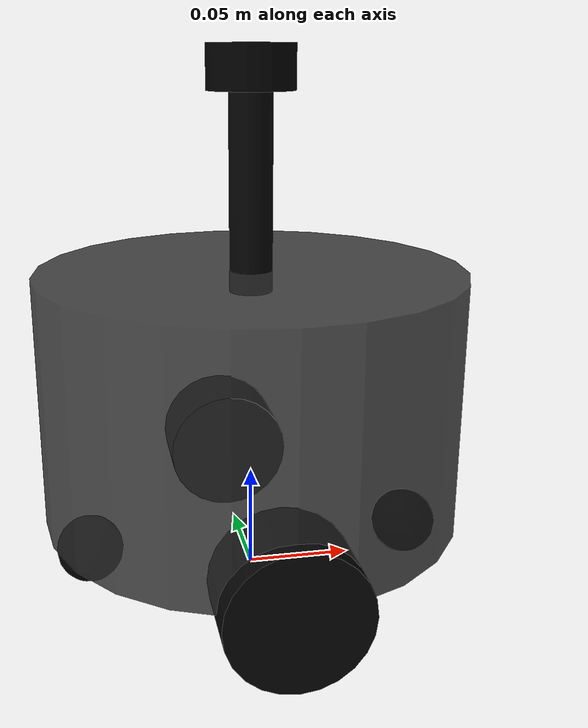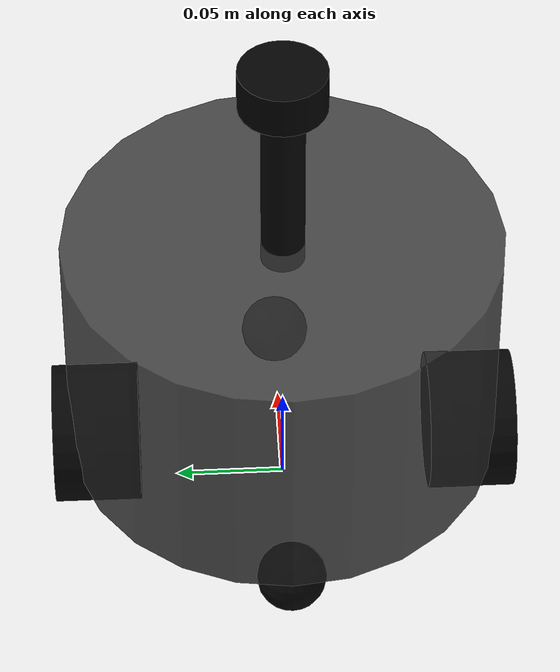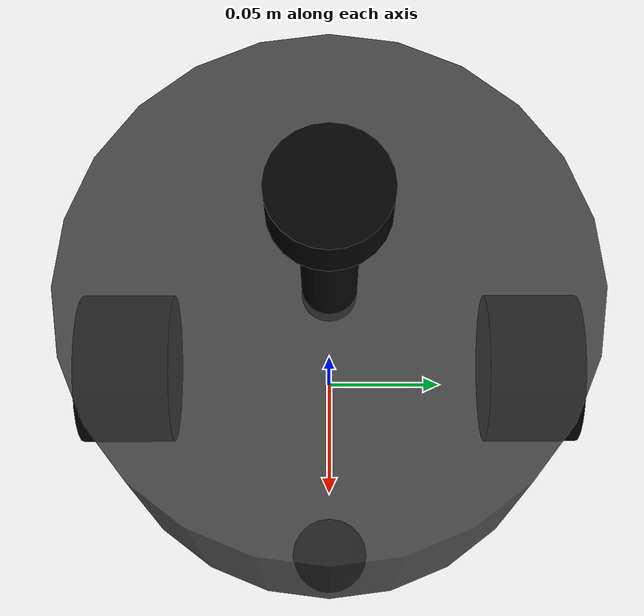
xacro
<?xml version="1.0"?>
<robot xmlns:xacro="http://www.ros.org/wiki/xacro" name="car">
  <!-- 主xacro只负责装配子模块，具体link/joint形状放在base/sensor/actuator文件中 -->
  <xacro:include filename="$(find car_description)/urdf/car/base.urdf.xacro"/>
  <xacro:include filename="$(find car_description)/urdf/car/sensor/imu.urdf.xacro"/>
  <xacro:include filename="$(find car_description)/urdf/car/sensor/laser.urdf.xacro"/>
  <xacro:include filename="$(find car_description)/urdf/car/sensor/ultrasonic.urdf.xacro"/>
  <xacro:include filename="$(find car_description)/urdf/car/actuator/wheel.urdf.xacro"/>
  <xacro:include filename="$(find car_description)/urdf/car/actuator/caster.urdf.xacro"/>

  <!-- 纯TF广播不需要准确的质量值，如果物理仿真需要 -->
  <xacro:property name="caster_mass" value="1.0" />
  <xacro:property name="wheel_mass" value="1.0" />
  <xacro:property name="imu_mass" value="1.0" />
  <xacro:property name="laser_stand_mass" value="1.0" />
  <xacro:property name="laser_mass" value="1.0" />
  <xacro:property name="base_mass" value="1.0" />

  <!-- base_link是实体车身中心，base_footprint是地面投影-->
  <xacro:base_xacro length="0.12" radius="0.1" base_mass="${base_mass}"/>

  <!-- 传感器位置用于TF和RViz2显示，不参与底层ESP32采样 -->
  <xacro:imu_xacro xyz="0 0 0.02" imu_mass="${imu_mass}"/>
  <xacro:laser_xacro
    xyz="0 0 0.1"
    laser_stand_mass="${laser_stand_mass}"
    laser_mass="${laser_stand_mass}"/>
  <xacro:ultrasonic_xacro xyz="0.1 0 0"/>

  <xacro:wheel_xacro
    wheel_name="left"
    xyz="0 0.0875 -0.06"
    wheel_mass="${wheel_mass}"/>
  <xacro:wheel_xacro
    wheel_name="right"
    xyz="0 -0.0875 -0.06"
    wheel_mass="${wheel_mass}"/>

  <!-- 前后万向轮只作为几何/碰撞显示 -->
  <xacro:caster_xacro
    caster_name="front"
    xyz="0.08 0 -0.076"
    caster_mass="${caster_mass}"/>
  <xacro:caster_xacro
    caster_name="back"
    xyz="-0.08 0 -0.076"
    caster_mass="${caster_mass}"/>
</robot>

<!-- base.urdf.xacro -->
<robot xmlns:xacro="http://www.ros.org/wiki/xacro">
  <xacro:include filename="$(find car_description)/urdf/car/inertia.urdf.xacro"/>

  <!-- base_xacro定义底盘主体和base_footprint->base_link静态TF -->
  <xacro:macro name="base_xacro" params="length radius base_mass">
    <!-- base_footprint放在地面投影处，Nav2代价地图通常使用该坐标系 -->
    <link name="base_footprint"/>

    <link name="base_link">
      <!-- visual只影响RViz显示，collision用于仿真/规划工具读取车体外形 -->
      <visual>
        <origin xyz="0 0 0" rpy="0 0 0"/>
        <geometry>
          <cylinder radius="${radius}" length="${length}"/>
        </geometry>
        <material name="car_body_black">
          <color rgba="0.2 0.2 0.2 0.85"/>
        </material>
      </visual>
      <collision>
        <origin xyz="0 0 0" rpy="0 0 0"/>
        <geometry>
          <cylinder radius="${radius}" length="${length}"/>
        </geometry>
      </collision>
      <xacro:cylinder_inertia m="${base_mass}" r="${radius}" h="${length}"/>
    </link>

    <joint name="base_footprint_to_base_link" type="fixed">
      <parent link="base_footprint"/>
      <child link="base_link"/>
      <!-- 高度设置让轮子紧贴地面 -->
      <origin xyz="0 0 ${length/2.0+0.032-0.001}" rpy="0 0 0"/>
    </joint>
  </xacro:macro>
</robot>

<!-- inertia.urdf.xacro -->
<robot xmlns:xacro="http://www.ros.org/wiki/xacro">
  <!-- 惯性宏让每个实体节点都有合法的惯性，robot_state_publisher或仿真工具读取时更稳定 -->
  <!-- lwh分别为长宽高单位米，m为质量单位千克 -->
  <xacro:macro name="box_inertia" params="m l w h">
    <inertial>
      <mass value="${m}"/>
      <inertia
        ixx="${(m / 12.0) * (w * w + h * h)}"
        ixy="0.0"
        ixz="0.0"
        iyy="${(m / 12.0) * (l * l + h * h)}"
        iyz="0.0"
        izz="${(m / 12.0) * (l * l + w * w)}"/>
    </inertial>
  </xacro:macro>

  <!-- 轮子和雷达支架使用圆柱惯性，r为半径，h为圆柱长度 -->
  <xacro:macro name="cylinder_inertia" params="m r h">
    <inertial>
      <mass value="${m}"/>
      <inertia
        ixx="${(m / 12.0) * (3.0 * r * r + h * h)}"
        ixy="0.0"
        ixz="0.0"
        iyy="${(m / 12.0) * (3.0 * r * r + h * h)}"
        iyz="0.0"
        izz="${(m / 2.0) * r * r}"/>
    </inertial>
  </xacro:macro>

  <!-- 万向轮使用球体惯性，r为半径 -->
  <xacro:macro name="sphere_inertia" params="m r">
    <inertial>
      <mass value="${m}"/>
      <inertia
        ixx="${(2.0 / 5.0) * m * r * r}"
        ixy="0.0"
        ixz="0.0"
        iyy="${(2.0 / 5.0) * m * r * r}"
        iyz="0.0"
        izz="${(2.0 / 5.0) * m * r * r}"/>
    </inertial>
  </xacro:macro>
</robot>

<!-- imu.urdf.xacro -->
<robot xmlns:xacro="http://www.ros.org/wiki/xacro">
  <xacro:include filename="$(find car_description)/urdf/car/inertia.urdf.xacro"/>

  <!-- imu_xacro定义imu_link，ESP32发布/imu/data时frame_id使用该名称 -->
  <xacro:macro name="imu_xacro" params="xyz imu_mass">
    <link name="imu_link">
      <visual>
        <origin xyz="0 0 0" rpy="0 0 0"/>
        <geometry>
          <box size="0.02 0.02 0.02"/>
        </geometry>
        <material name="imu_black">
          <color rgba="0.02 0.02 0.02 0.5"/>
        </material>
      </visual>
      <collision>
        <origin xyz="0 0 0" rpy="0 0 0"/>
        <geometry>
          <box size="0.02 0.02 0.02"/>
        </geometry>
      </collision>
      <xacro:box_inertia m="${imu_mass}" l="0.02" w="0.02" h="0.02"/>
    </link>

    <joint name="imu_joint" type="fixed">
      <!-- IMU固定安装在车体上 -->
      <parent link="base_link"/>
      <child link="imu_link"/>
      <origin xyz="${xyz}" rpy="0 0 0"/>
    </joint>
  </xacro:macro>
</robot>

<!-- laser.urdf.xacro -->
<robot xmlns:xacro="http://www.ros.org/wiki/xacro">
  <xacro:include filename="$(find car_description)/urdf/car/inertia.urdf.xacro"/>

  <!-- laser_xacro定义雷达支架和laser_link，YDLIDAR的/scan使用laser_link -->
  <xacro:macro name="laser_xacro" params="xyz laser_stand_mass laser_mass">
    <!-- 雷达支架节点 -->
    <link name="laser_stand_link">
      <visual>
        <origin xyz="0 0 0" rpy="0 0 0"/>
        <geometry>
          <cylinder length="0.1" radius="0.01"/>
        </geometry>
        <material name="laser_stand_black">
          <color rgba="0.02 0.02 0.02 1.0"/>
        </material>
      </visual>
      <collision>
        <origin xyz="0 0 0" rpy="0 0 0"/>
        <geometry>
          <cylinder length="0.1" radius="0.01"/>
        </geometry>
      </collision>
      <xacro:cylinder_inertia m="${laser_stand_mass}" r="0.01" h="0.1"/>
    </link>

    <joint name="laser_stand_joint" type="fixed">
      <!-- 支架固定到base_link，xyz表示支架底部相对车体的位置 -->
      <parent link="base_link"/>
      <child link="laser_stand_link"/>
      <origin xyz="${xyz}" rpy="0 0 0"/>
    </joint>

    <!-- 雷达节点 -->
    <link name="laser_link">
      <visual>
        <origin xyz="0 0 0" rpy="0 0 0"/>
        <geometry>
          <cylinder length="0.02" radius="0.02"/>
        </geometry>
        <material name="laser_black">
          <color rgba="0.01 0.01 0.01 1.0"/>
        </material>
      </visual>
      <collision>
        <origin xyz="0 0 0" rpy="0 0 0"/>
        <geometry>
          <cylinder length="0.02" radius="0.02"/>
        </geometry>
      </collision>
      <xacro:cylinder_inertia m="${laser_mass}" r="0.02" h="0.02"/>
    </link>

    <joint name="laser_joint" type="fixed">
      <!-- laser_link位于支架顶部，z=0.0525让扫描平面高于车体 -->
      <parent link="laser_stand_link"/>
      <child link="laser_link"/>
      <origin xyz="0 0 0.05" rpy="0 0 0"/>
    </joint>
  </xacro:macro>
</robot>

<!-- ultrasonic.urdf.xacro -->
<robot xmlns:xacro="http://www.ros.org/wiki/xacro">
  <!-- ultrasonic_xacro定义前向超声波测距坐标系 -->
  <xacro:macro name="ultrasonic_xacro" params="xyz">
    <link name="ultrasonic_link"/>

    <joint name="base_link_to_ultrasonic_link" type="fixed">
      <parent link="base_link"/>
      <child link="ultrasonic_link"/>
      <origin xyz="${xyz}" rpy="0 0 0"/>
    </joint>
  </xacro:macro>
</robot>

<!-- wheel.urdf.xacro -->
<robot xmlns:xacro="http://www.ros.org/wiki/xacro">
  <xacro:include filename="$(find car_description)/urdf/car/inertia.urdf.xacro"/>

  <!-- wheel_xacro生成左右驱动轮和相对base_link的静态TF -->
  <xacro:macro name="wheel_xacro" params="wheel_name xyz wheel_mass">
    <link name="${wheel_name}_wheel_link">
      <visual>
        <!-- ROS圆柱默认沿Z轴，这里绕X旋转90度，让轮轴沿底盘Y轴 -->
        <origin xyz="0 0 0" rpy="1.57079632679 0 0"/>
        <geometry>
          <cylinder length="0.04" radius="0.032"/>
        </geometry>
        <material name="${wheel_name}_wheel_black">
          <color rgba="0.02 0.02 0.02 1.0"/>
        </material>
      </visual>
      <collision>
        <origin xyz="0 0 0" rpy="1.57079632679 0 0"/>
        <geometry>
          <cylinder length="0.04" radius="0.032"/>
        </geometry>
      </collision>
      <xacro:cylinder_inertia m="${wheel_mass}" r="0.032" h="0.04"/>
    </link>

    <joint name="${wheel_name}_wheel_joint" type="continuous">
      <parent link="base_link"/>
      <child link="${wheel_name}_wheel_link"/>
      <origin xyz="${xyz}" rpy="0 0 0"/>
      <axis xyz="0.0 1.0 0.0"/>
    </joint>
  </xacro:macro>
</robot>

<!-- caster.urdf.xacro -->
<robot xmlns:xacro="http://www.ros.org/wiki/xacro">
  <xacro:include filename="$(find car_description)/urdf/car/inertia.urdf.xacro"/>

  <!-- caster_xacro是前后支撑万向轮，用于模型显示和碰撞体完整性 -->
  <xacro:macro name="caster_xacro" params="caster_name xyz caster_mass">
    <link name="${caster_name}_caster_link">
      <visual>
        <origin xyz="0 0 0" rpy="0 0 0"/>
        <geometry>
          <sphere radius="0.016"/>
        </geometry>
        <material name="${caster_name}_caster_black">
          <color rgba="0.02 0.02 0.02 1.0"/>
        </material>
      </visual>
      <collision>
        <origin xyz="0 0 0" rpy="0 0 0"/>
        <geometry>
          <sphere radius="0.016"/>
        </geometry>
      </collision>
      <xacro:sphere_inertia m="${caster_mass}" r="0.016"/>
    </link>

    <joint name="${caster_name}_caster_joint" type="fixed">
      <!-- 万向轮没有独立状态，固定到base_link上 -->
      <parent link="base_link"/>
      <child link="${caster_name}_caster_link"/>
      <origin xyz="${xyz}" rpy="0 0 0"/>
      <axis xyz="0.0 0.0 0.0"/>
    </joint>
  </xacro:macro>
</robot>
